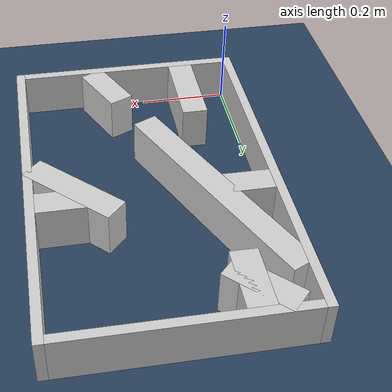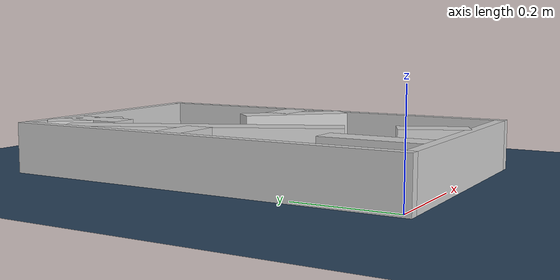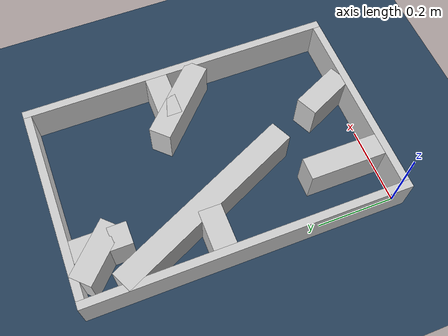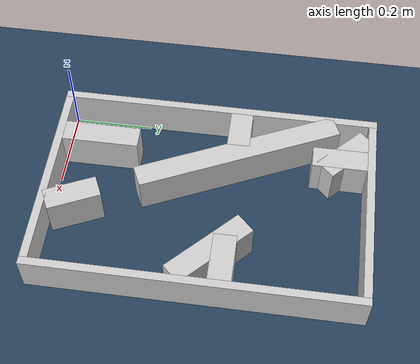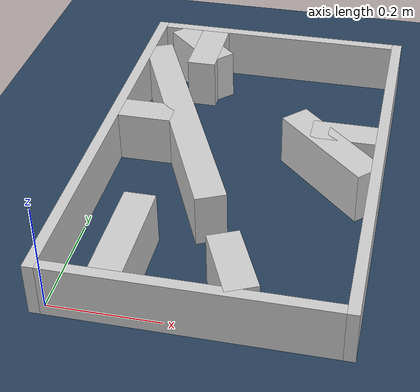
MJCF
<?xml version="1.0" ?>
<mujoco model="generated_real_template">
  <compiler angle="degree"/>
  <option timestep="0.002" integrator="implicitfast" iterations="100" cone="elliptic"/>
  <default>
    <geom density="1"/>
  </default>
  <asset>
    <texture builtin="gradient" height="3072" rgb1="0.3 0.5 0.7" rgb2="0 0 0" type="skybox" width="512"/>
    <texture builtin="checker" height="300" mark="edge" markrgb="0.8 0.8 0.8" name="groundplane" rgb1="0.2 0.3 0.4" rgb2="0.1 0.2 0.3" type="2d" width="300"/>
    <material name="groundplane" reflectance="0.2" texrepeat="5 5" texture="groundplane" texuniform="true"/>
  </asset>
  <worldbody>
    <light dir="0 0 -1" directional="true" pos="0 0 1.5"/>
    <geom name="floor" type="plane" condim="4" friction="0.5 0.005 0.001" material="groundplane" size="0 0 0.05"/>
    <body name="walls">
      <geom name="wall_boundary_left" type="box" condim="4" friction="1.0 0.005 0.0001" rgba="0.8 0.8 0.8 1" pos="-0.010000 0.387500 0.050000" euler="0 0 0.000000" size="0.010000 0.407500 0.050000"/>
      <geom name="wall_boundary_right" type="box" condim="4" friction="1.0 0.005 0.0001" rgba="0.8 0.8 0.8 1" pos="0.500000 0.387500 0.050000" euler="0 0 0.000000" size="0.010000 0.407500 0.050000"/>
      <geom name="wall_boundary_bottom" type="box" condim="4" friction="1.0 0.005 0.0001" rgba="0.8 0.8 0.8 1" pos="0.245000 -0.010000 0.050000" euler="0 0 0.000000" size="0.245000 0.010000 0.050000"/>
      <geom name="wall_boundary_top" type="box" condim="4" friction="1.0 0.005 0.0001" rgba="0.8 0.8 0.8 1" pos="0.245000 0.785000 0.050000" euler="0 0 0.000000" size="0.245000 0.010000 0.050000"/>
      <geom name="wall_inner_1_1" type="box" condim="4" friction="1.0 0.005 0.0001" rgba="0.8 0.8 0.8 1" pos="0.299550 0.061017 0.050000" euler="0 0 114.995190" size="0.067322 0.028500 0.050000"/>
      <geom name="wall_inner_1_2" type="box" condim="4" friction="1.0 0.005 0.0001" rgba="0.8 0.8 0.8 1" pos="0.118206 0.449996 0.050000" euler="0 0 114.995190" size="0.265949 0.028500 0.050000"/>
      <geom name="wall_inner_2_1" type="box" condim="4" friction="1.0 0.005 0.0001" rgba="0.8 0.8 0.8 1" pos="0.110497 0.097096 0.050000" euler="0 0 90.000000" size="0.097096 0.028500 0.050000"/>
      <geom name="wall_inner_2_2" type="box" condim="4" friction="1.0 0.005 0.0001" rgba="0.8 0.8 0.8 1" pos="0.110497 0.706168 0.050000" euler="0 0 90.000000" size="0.068832 0.028500 0.050000"/>
      <geom name="wall_inner_3_1" type="box" condim="4" friction="1.0 0.005 0.0001" rgba="0.8 0.8 0.8 1" pos="0.050703 0.447756 0.050000" euler="0 0 0.000000" size="0.050703 0.028500 0.050000"/>
      <geom name="wall_inner_3_2" type="box" condim="4" friction="1.0 0.005 0.0001" rgba="0.8 0.8 0.8 1" pos="0.429351 0.447756 0.050000" euler="0 0 0.000000" size="0.060649 0.028500 0.050000"/>
      <geom name="wall_inner_4_1" type="box" condim="4" friction="1.0 0.005 0.0001" rgba="0.8 0.8 0.8 1" pos="0.092880 0.721974 0.050000" euler="0 0 -44.245594" size="0.075400 0.028500 0.050000"/>
      <geom name="wall_inner_4_2" type="box" condim="4" friction="1.0 0.005 0.0001" rgba="0.8 0.8 0.8 1" pos="0.409429 0.413653 0.050000" euler="0 0 -44.245594" size="0.112474 0.028500 0.050000"/>
    </body>
  </worldbody>
</mujoco>
